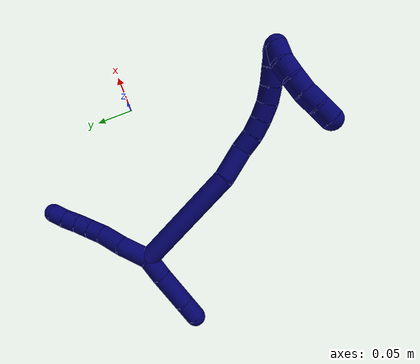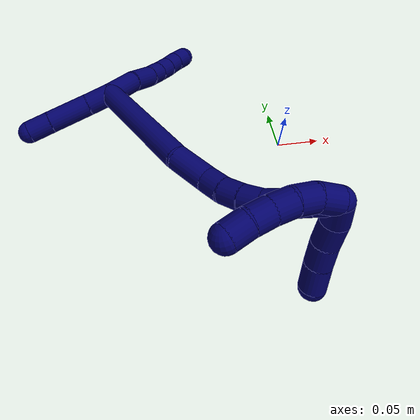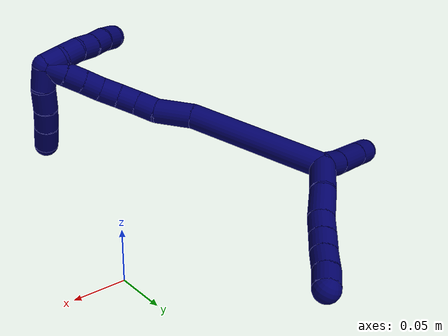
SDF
<sdf version="1.7">
 <world name="default">
  <model name="7">
   <static>0</static>
   <link name="7">
    <collision name="collision-cylinder-e_1_2_8">
     <pose>0.010682 0.015475 -0.00401 -1.82433 0.589076 -0.747153</pose>
     <geometry><cylinder><radius>0.0125</radius><length>0.038454</length></cylinder></geometry>
     <surface>
      <friction><ode><mu>1.16</mu><mu2>1.16</mu2><slip1>0</slip1><slip2>0</slip2></ode></friction>
      <contact><ode><kp>1e+06</kp><kd>1</kd><max_vel>0</max_vel><min_depth>0.001</min_depth></ode></contact>
     </surface>
    </collision>
    <visual name="visual-cylinder-e_1_2_8">
     <pose>0.010682 0.015475 -0.00401 -1.82433 0.589076 -0.747153</pose>
     <geometry><cylinder><radius>0.0125</radius><length>0.038454</length></cylinder></geometry>
     <material><ambient>0.003922 0 0.403922 1</ambient></material>
    </visual>
    <collision name="collision-cylinder-e_2_8_9">
     <pose>0.029428 0.043184 -0.013838 -2.01477 0.536927 -0.821444</pose>
     <geometry><cylinder><radius>0.0125</radius><length>0.031529</length></cylinder></geometry>
     <surface>
      <friction><ode><mu>1.16</mu><mu2>1.16</mu2><slip1>0</slip1><slip2>0</slip2></ode></friction>
      <contact><ode><kp>1e+06</kp><kd>1</kd><max_vel>0</max_vel><min_depth>0.001</min_depth></ode></contact>
     </surface>
    </collision>
    <visual name="visual-cylinder-e_2_8_9">
     <pose>0.029428 0.043184 -0.013838 -2.01477 0.536927 -0.821444</pose>
     <geometry><cylinder><radius>0.0125</radius><length>0.031529</length></cylinder></geometry>
     <material><ambient>0.003922 0 0.403922 1</ambient></material>
    </visual>
    <collision name="collision-cylinder-e_3_9_10">
     <pose>0.042037 0.063846 -0.022544 -1.90082 0.47165 -0.64887</pose>
     <geometry><cylinder><radius>0.0125</radius><length>0.020005</length></cylinder></geometry>
     <surface>
      <friction><ode><mu>1.16</mu><mu2>1.16</mu2><slip1>0</slip1><slip2>0</slip2></ode></friction>
      <contact><ode><kp>1e+06</kp><kd>1</kd><max_vel>0</max_vel><min_depth>0.001</min_depth></ode></contact>
     </surface>
    </collision>
    <visual name="visual-cylinder-e_3_9_10">
     <pose>0.042037 0.063846 -0.022544 -1.90082 0.47165 -0.64887</pose>
     <geometry><cylinder><radius>0.0125</radius><length>0.020005</length></cylinder></geometry>
     <material><ambient>0.003922 0 0.403922 1</ambient></material>
    </visual>
    <collision name="collision-cylinder-e_4_10_11">
     <pose>0.051524 0.08059 -0.027974 -1.86752 0.516966 -0.686364</pose>
     <geometry><cylinder><radius>0.0125</radius><length>0.020002</length></cylinder></geometry>
     <surface>
      <friction><ode><mu>1.16</mu><mu2>1.16</mu2><slip1>0</slip1><slip2>0</slip2></ode></friction>
      <contact><ode><kp>1e+06</kp><kd>1</kd><max_vel>0</max_vel><min_depth>0.001</min_depth></ode></contact>
     </surface>
    </collision>
    <visual name="visual-cylinder-e_4_10_11">
     <pose>0.051524 0.08059 -0.027974 -1.86752 0.516966 -0.686364</pose>
     <geometry><cylinder><radius>0.0125</radius><length>0.020002</length></cylinder></geometry>
     <material><ambient>0.003922 0 0.403922 1</ambient></material>
    </visual>
    <collision name="collision-cylinder-e_5_11_12">
     <pose>0.06126 0.097472 -0.03243 -1.79058 0.499682 -0.616622</pose>
     <geometry><cylinder><radius>0.0125</radius><length>0.020003</length></cylinder></geometry>
     <surface>
      <friction><ode><mu>1.16</mu><mu2>1.16</mu2><slip1>0</slip1><slip2>0</slip2></ode></friction>
      <contact><ode><kp>1e+06</kp><kd>1</kd><max_vel>0</max_vel><min_depth>0.001</min_depth></ode></contact>
     </surface>
    </collision>
    <visual name="visual-cylinder-e_5_11_12">
     <pose>0.06126 0.097472 -0.03243 -1.79058 0.499682 -0.616622</pose>
     <geometry><cylinder><radius>0.0125</radius><length>0.020003</length></cylinder></geometry>
     <material><ambient>0.003922 0 0.403922 1</ambient></material>
    </visual>
    <collision name="collision-cylinder-e_6_12_6">
     <pose>0.071635 0.114034 -0.036576 -1.84305 0.592082 -0.764147</pose>
     <geometry><cylinder><radius>0.0125</radius><length>0.020006</length></cylinder></geometry>
     <surface>
      <friction><ode><mu>1.16</mu><mu2>1.16</mu2><slip1>0</slip1><slip2>0</slip2></ode></friction>
      <contact><ode><kp>1e+06</kp><kd>1</kd><max_vel>0</max_vel><min_depth>0.001</min_depth></ode></contact>
     </surface>
    </collision>
    <visual name="visual-cylinder-e_6_12_6">
     <pose>0.071635 0.114034 -0.036576 -1.84305 0.592082 -0.764147</pose>
     <geometry><cylinder><radius>0.0125</radius><length>0.020006</length></cylinder></geometry>
     <material><ambient>0.003922 0 0.403922 1</ambient></material>
    </visual>
    <collision name="collision-cylinder-e_1_2_13">
     <pose>-0.013534 -0.003868 -0.000372 1.66657 -1.29118 -1.38447</pose>
     <geometry><cylinder><radius>0.0125</radius><length>0.028161</length></cylinder></geometry>
     <surface>
      <friction><ode><mu>1.16</mu><mu2>1.16</mu2><slip1>0</slip1><slip2>0</slip2></ode></friction>
      <contact><ode><kp>1e+06</kp><kd>1</kd><max_vel>0</max_vel><min_depth>0.001</min_depth></ode></contact>
     </surface>
    </collision>
    <visual name="visual-cylinder-e_1_2_13">
     <pose>-0.013534 -0.003868 -0.000372 1.66657 -1.29118 -1.38447</pose>
     <geometry><cylinder><radius>0.0125</radius><length>0.028161</length></cylinder></geometry>
     <material><ambient>0.003922 0 0.403922 1</ambient></material>
    </visual>
    <collision name="collision-cylinder-e_2_13_14">
     <pose>-0.048661 -0.015922 -0.000186 1.5028 -1.20769 -1.14488</pose>
     <geometry><cylinder><radius>0.0125</radius><length>0.046199</length></cylinder></geometry>
     <surface>
      <friction><ode><mu>1.16</mu><mu2>1.16</mu2><slip1>0</slip1><slip2>0</slip2></ode></friction>
      <contact><ode><kp>1e+06</kp><kd>1</kd><max_vel>0</max_vel><min_depth>0.001</min_depth></ode></contact>
     </surface>
    </collision>
    <visual name="visual-cylinder-e_2_13_14">
     <pose>-0.048661 -0.015922 -0.000186 1.5028 -1.20769 -1.14488</pose>
     <geometry><cylinder><radius>0.0125</radius><length>0.046199</length></cylinder></geometry>
     <material><ambient>0.003922 0 0.403922 1</ambient></material>
    </visual>
    <collision name="collision-cylinder-e_3_14_5">
     <pose>-0.082278 -0.028551 0.000543 1.53221 -1.2166 -1.18065</pose>
     <geometry><cylinder><radius>0.0125</radius><length>0.02564</length></cylinder></geometry>
     <surface>
      <friction><ode><mu>1.16</mu><mu2>1.16</mu2><slip1>0</slip1><slip2>0</slip2></ode></friction>
      <contact><ode><kp>1e+06</kp><kd>1</kd><max_vel>0</max_vel><min_depth>0.001</min_depth></ode></contact>
     </surface>
    </collision>
    <visual name="visual-cylinder-e_3_14_5">
     <pose>-0.082278 -0.028551 0.000543 1.53221 -1.2166 -1.18065</pose>
     <geometry><cylinder><radius>0.0125</radius><length>0.02564</length></cylinder></geometry>
     <material><ambient>0.003922 0 0.403922 1</ambient></material>
    </visual>
    <collision name="collision-cylinder-e_1_2_15">
     <pose>0.035015 -0.05853 -0.0134 1.79586 0.527946 0.653954</pose>
     <geometry><cylinder><radius>0.0125</radius><length>0.139016</length></cylinder></geometry>
     <surface>
      <friction><ode><mu>1.16</mu><mu2>1.16</mu2><slip1>0</slip1><slip2>0</slip2></ode></friction>
      <contact><ode><kp>1e+06</kp><kd>1</kd><max_vel>0</max_vel><min_depth>0.001</min_depth></ode></contact>
     </surface>
    </collision>
    <visual name="visual-cylinder-e_1_2_15">
     <pose>0.035015 -0.05853 -0.0134 1.79586 0.527946 0.653954</pose>
     <geometry><cylinder><radius>0.0125</radius><length>0.139016</length></cylinder></geometry>
     <material><ambient>0.003922 0 0.403922 1</ambient></material>
    </visual>
    <collision name="collision-cylinder-e_2_15_16">
     <pose>0.08212 -0.130537 -0.033471 2.03047 0.677097 1.0319</pose>
     <geometry><cylinder><radius>0.0125</radius><length>0.038589</length></cylinder></geometry>
     <surface>
      <friction><ode><mu>1.16</mu><mu2>1.16</mu2><slip1>0</slip1><slip2>0</slip2></ode></friction>
      <contact><ode><kp>1e+06</kp><kd>1</kd><max_vel>0</max_vel><min_depth>0.001</min_depth></ode></contact>
     </surface>
    </collision>
    <visual name="visual-cylinder-e_2_15_16">
     <pose>0.08212 -0.130537 -0.033471 2.03047 0.677097 1.0319</pose>
     <geometry><cylinder><radius>0.0125</radius><length>0.038589</length></cylinder></geometry>
     <material><ambient>0.003922 0 0.403922 1</ambient></material>
    </visual>
    <collision name="collision-cylinder-e_3_16_17">
     <pose>0.100626 -0.152341 -0.041542 1.73728 0.649904 0.757956</pose>
     <geometry><cylinder><radius>0.0125</radius><length>0.021212</length></cylinder></geometry>
     <surface>
      <friction><ode><mu>1.16</mu><mu2>1.16</mu2><slip1>0</slip1><slip2>0</slip2></ode></friction>
      <contact><ode><kp>1e+06</kp><kd>1</kd><max_vel>0</max_vel><min_depth>0.001</min_depth></ode></contact>
     </surface>
    </collision>
    <visual name="visual-cylinder-e_3_16_17">
     <pose>0.100626 -0.152341 -0.041542 1.73728 0.649904 0.757956</pose>
     <geometry><cylinder><radius>0.0125</radius><length>0.021212</length></cylinder></geometry>
     <material><ambient>0.003922 0 0.403922 1</ambient></material>
    </visual>
    <collision name="collision-cylinder-e_4_17_18">
     <pose>0.114584 -0.167434 -0.043762 1.69152 0.835881 0.92927</pose>
     <geometry><cylinder><radius>0.0125</radius><length>0.020327</length></cylinder></geometry>
     <surface>
      <friction><ode><mu>1.16</mu><mu2>1.16</mu2><slip1>0</slip1><slip2>0</slip2></ode></friction>
      <contact><ode><kp>1e+06</kp><kd>1</kd><max_vel>0</max_vel><min_depth>0.001</min_depth></ode></contact>
     </surface>
    </collision>
    <visual name="visual-cylinder-e_4_17_18">
     <pose>0.114584 -0.167434 -0.043762 1.69152 0.835881 0.92927</pose>
     <geometry><cylinder><radius>0.0125</radius><length>0.020327</length></cylinder></geometry>
     <material><ambient>0.003922 0 0.403922 1</ambient></material>
    </visual>
    <collision name="collision-cylinder-e_5_18_19">
     <pose>0.130243 -0.180053 -0.045059 1.65187 0.944509 1.0118</pose>
     <geometry><cylinder><radius>0.0125</radius><length>0.02004</length></cylinder></geometry>
     <surface>
      <friction><ode><mu>1.16</mu><mu2>1.16</mu2><slip1>0</slip1><slip2>0</slip2></ode></friction>
      <contact><ode><kp>1e+06</kp><kd>1</kd><max_vel>0</max_vel><min_depth>0.001</min_depth></ode></contact>
     </surface>
    </collision>
    <visual name="visual-cylinder-e_5_18_19">
     <pose>0.130243 -0.180053 -0.045059 1.65187 0.944509 1.0118</pose>
     <geometry><cylinder><radius>0.0125</radius><length>0.02004</length></cylinder></geometry>
     <material><ambient>0.003922 0 0.403922 1</ambient></material>
    </visual>
    <collision name="collision-cylinder-e_6_19_20">
     <pose>0.1474 -0.190097 -0.044593 1.34986 1.12726 0.936575</pose>
     <geometry><cylinder><radius>0.0125</radius><length>0.020016</length></cylinder></geometry>
     <surface>
      <friction><ode><mu>1.16</mu><mu2>1.16</mu2><slip1>0</slip1><slip2>0</slip2></ode></friction>
      <contact><ode><kp>1e+06</kp><kd>1</kd><max_vel>0</max_vel><min_depth>0.001</min_depth></ode></contact>
     </surface>
    </collision>
    <visual name="visual-cylinder-e_6_19_20">
     <pose>0.1474 -0.190097 -0.044593 1.34986 1.12726 0.936575</pose>
     <geometry><cylinder><radius>0.0125</radius><length>0.020016</length></cylinder></geometry>
     <material><ambient>0.003922 0 0.403922 1</ambient></material>
    </visual>
    <collision name="collision-cylinder-e_7_20_21">
     <pose>0.166119 -0.197857 -0.042569 1.27622 1.20295 0.941601</pose>
     <geometry><cylinder><radius>0.0125</radius><length>0.020746</length></cylinder></geometry>
     <surface>
      <friction><ode><mu>1.16</mu><mu2>1.16</mu2><slip1>0</slip1><slip2>0</slip2></ode></friction>
      <contact><ode><kp>1e+06</kp><kd>1</kd><max_vel>0</max_vel><min_depth>0.001</min_depth></ode></contact>
     </surface>
    </collision>
    <visual name="visual-cylinder-e_7_20_21">
     <pose>0.166119 -0.197857 -0.042569 1.27622 1.20295 0.941601</pose>
     <geometry><cylinder><radius>0.0125</radius><length>0.020746</length></cylinder></geometry>
     <material><ambient>0.003922 0 0.403922 1</ambient></material>
    </visual>
    <collision name="collision-cylinder-e_8_21_1">
     <pose>0.185145 -0.204975 -0.04072 1.35829 1.20027 1.00941</pose>
     <geometry><cylinder><radius>0.0125</radius><length>0.020053</length></cylinder></geometry>
     <surface>
      <friction><ode><mu>1.16</mu><mu2>1.16</mu2><slip1>0</slip1><slip2>0</slip2></ode></friction>
      <contact><ode><kp>1e+06</kp><kd>1</kd><max_vel>0</max_vel><min_depth>0.001</min_depth></ode></contact>
     </surface>
    </collision>
    <visual name="visual-cylinder-e_8_21_1">
     <pose>0.185145 -0.204975 -0.04072 1.35829 1.20027 1.00941</pose>
     <geometry><cylinder><radius>0.0125</radius><length>0.020053</length></cylinder></geometry>
     <material><ambient>0.003922 0 0.403922 1</ambient></material>
    </visual>
    <collision name="collision-cylinder-e_1_1_22">
     <pose>0.191701 -0.207301 -0.05142 -3.03533 -0.237417 2.3027</pose>
     <geometry><cylinder><radius>0.0125</radius><length>0.023728</length></cylinder></geometry>
     <surface>
      <friction><ode><mu>1.16</mu><mu2>1.16</mu2><slip1>0</slip1><slip2>0</slip2></ode></friction>
      <contact><ode><kp>1e+06</kp><kd>1</kd><max_vel>0</max_vel><min_depth>0.001</min_depth></ode></contact>
     </surface>
    </collision>
    <visual name="visual-cylinder-e_1_1_22">
     <pose>0.191701 -0.207301 -0.05142 -3.03533 -0.237417 2.3027</pose>
     <geometry><cylinder><radius>0.0125</radius><length>0.023728</length></cylinder></geometry>
     <material><ambient>0.003922 0 0.403922 1</ambient></material>
    </visual>
    <collision name="collision-cylinder-e_2_22_23">
     <pose>0.183403 -0.205946 -0.074345 -3.13002 -0.448 3.09079</pose>
     <geometry><cylinder><radius>0.0125</radius><length>0.025427</length></cylinder></geometry>
     <surface>
      <friction><ode><mu>1.16</mu><mu2>1.16</mu2><slip1>0</slip1><slip2>0</slip2></ode></friction>
      <contact><ode><kp>1e+06</kp><kd>1</kd><max_vel>0</max_vel><min_depth>0.001</min_depth></ode></contact>
     </surface>
    </collision>
    <visual name="visual-cylinder-e_2_22_23">
     <pose>0.183403 -0.205946 -0.074345 -3.13002 -0.448 3.09079</pose>
     <geometry><cylinder><radius>0.0125</radius><length>0.025427</length></cylinder></geometry>
     <material><ambient>0.003922 0 0.403922 1</ambient></material>
    </visual>
    <collision name="collision-cylinder-e_3_23_24">
     <pose>0.173115 -0.206777 -0.096789 3.05404 -0.409082 -2.72537</pose>
     <geometry><cylinder><radius>0.0125</radius><length>0.02404</length></cylinder></geometry>
     <surface>
      <friction><ode><mu>1.16</mu><mu2>1.16</mu2><slip1>0</slip1><slip2>0</slip2></ode></friction>
      <contact><ode><kp>1e+06</kp><kd>1</kd><max_vel>0</max_vel><min_depth>0.001</min_depth></ode></contact>
     </surface>
    </collision>
    <visual name="visual-cylinder-e_3_23_24">
     <pose>0.173115 -0.206777 -0.096789 3.05404 -0.409082 -2.72537</pose>
     <geometry><cylinder><radius>0.0125</radius><length>0.02404</length></cylinder></geometry>
     <material><ambient>0.003922 0 0.403922 1</ambient></material>
    </visual>
    <collision name="collision-cylinder-e_4_24_4">
     <pose>0.163242 -0.209597 -0.120033 2.99139 -0.389675 -2.41304</pose>
     <geometry><cylinder><radius>0.0125</radius><length>0.026805</length></cylinder></geometry>
     <surface>
      <friction><ode><mu>1.16</mu><mu2>1.16</mu2><slip1>0</slip1><slip2>0</slip2></ode></friction>
      <contact><ode><kp>1e+06</kp><kd>1</kd><max_vel>0</max_vel><min_depth>0.001</min_depth></ode></contact>
     </surface>
    </collision>
    <visual name="visual-cylinder-e_4_24_4">
     <pose>0.163242 -0.209597 -0.120033 2.99139 -0.389675 -2.41304</pose>
     <geometry><cylinder><radius>0.0125</radius><length>0.026805</length></cylinder></geometry>
     <material><ambient>0.003922 0 0.403922 1</ambient></material>
    </visual>
    <collision name="collision-cylinder-e_1_1_25">
     <pose>0.186357 -0.20952 -0.034223 0.171936 -0.949924 -0.088574</pose>
     <geometry><cylinder><radius>0.0125</radius><length>0.02</length></cylinder></geometry>
     <surface>
      <friction><ode><mu>1.16</mu><mu2>1.16</mu2><slip1>0</slip1><slip2>0</slip2></ode></friction>
      <contact><ode><kp>1e+06</kp><kd>1</kd><max_vel>0</max_vel><min_depth>0.001</min_depth></ode></contact>
     </surface>
    </collision>
    <visual name="visual-cylinder-e_1_1_25">
     <pose>0.186357 -0.20952 -0.034223 0.171936 -0.949924 -0.088574</pose>
     <geometry><cylinder><radius>0.0125</radius><length>0.02</length></cylinder></geometry>
     <material><ambient>0.003922 0 0.403922 1</ambient></material>
    </visual>
    <collision name="collision-cylinder-e_2_25_26">
     <pose>0.169618 -0.213778 -0.024579 0.695117 -1.03628 -0.407322</pose>
     <geometry><cylinder><radius>0.0125</radius><length>0.02</length></cylinder></geometry>
     <surface>
      <friction><ode><mu>1.16</mu><mu2>1.16</mu2><slip1>0</slip1><slip2>0</slip2></ode></friction>
      <contact><ode><kp>1e+06</kp><kd>1</kd><max_vel>0</max_vel><min_depth>0.001</min_depth></ode></contact>
     </surface>
    </collision>
    <visual name="visual-cylinder-e_2_25_26">
     <pose>0.169618 -0.213778 -0.024579 0.695117 -1.03628 -0.407322</pose>
     <geometry><cylinder><radius>0.0125</radius><length>0.02</length></cylinder></geometry>
     <material><ambient>0.003922 0 0.403922 1</ambient></material>
    </visual>
    <collision name="collision-cylinder-e_3_26_27">
     <pose>0.151943 -0.220816 -0.018801 1.1117 -1.13615 -0.754924</pose>
     <geometry><cylinder><radius>0.0125</radius><length>0.02</length></cylinder></geometry>
     <surface>
      <friction><ode><mu>1.16</mu><mu2>1.16</mu2><slip1>0</slip1><slip2>0</slip2></ode></friction>
      <contact><ode><kp>1e+06</kp><kd>1</kd><max_vel>0</max_vel><min_depth>0.001</min_depth></ode></contact>
     </surface>
    </collision>
    <visual name="visual-cylinder-e_3_26_27">
     <pose>0.151943 -0.220816 -0.018801 1.1117 -1.13615 -0.754924</pose>
     <geometry><cylinder><radius>0.0125</radius><length>0.02</length></cylinder></geometry>
     <material><ambient>0.003922 0 0.403922 1</ambient></material>
    </visual>
    <collision name="collision-cylinder-e_4_27_28">
     <pose>0.134488 -0.229611 -0.014814 1.17111 -0.994431 -0.690901</pose>
     <geometry><cylinder><radius>0.0125</radius><length>0.02</length></cylinder></geometry>
     <surface>
      <friction><ode><mu>1.16</mu><mu2>1.16</mu2><slip1>0</slip1><slip2>0</slip2></ode></friction>
      <contact><ode><kp>1e+06</kp><kd>1</kd><max_vel>0</max_vel><min_depth>0.001</min_depth></ode></contact>
     </surface>
    </collision>
    <visual name="visual-cylinder-e_4_27_28">
     <pose>0.134488 -0.229611 -0.014814 1.17111 -0.994431 -0.690901</pose>
     <geometry><cylinder><radius>0.0125</radius><length>0.02</length></cylinder></geometry>
     <material><ambient>0.003922 0 0.403922 1</ambient></material>
    </visual>
    <collision name="collision-cylinder-e_5_28_3">
     <pose>0.117437 -0.239603 -0.012282 1.48822 -1.04843 -0.978303</pose>
     <geometry><cylinder><radius>0.0125</radius><length>0.02</length></cylinder></geometry>
     <surface>
      <friction><ode><mu>1.16</mu><mu2>1.16</mu2><slip1>0</slip1><slip2>0</slip2></ode></friction>
      <contact><ode><kp>1e+06</kp><kd>1</kd><max_vel>0</max_vel><min_depth>0.001</min_depth></ode></contact>
     </surface>
    </collision>
    <visual name="visual-cylinder-e_5_28_3">
     <pose>0.117437 -0.239603 -0.012282 1.48822 -1.04843 -0.978303</pose>
     <geometry><cylinder><radius>0.0125</radius><length>0.02</length></cylinder></geometry>
     <material><ambient>0.003922 0 0.403922 1</ambient></material>
    </visual>
    <collision name="collision-sphere-3">
     <pose>0.108771 -0.244576 -0.01187 0 -0 0</pose>
     <geometry><sphere><radius>0.0125</radius></sphere></geometry>
     <surface>
      <friction><ode><mu>1.16</mu><mu2>1.16</mu2><slip1>0</slip1><slip2>0</slip2></ode></friction>
      <contact><ode><kp>1e+06</kp><kd>1</kd><max_vel>0</max_vel><min_depth>0.001</min_depth></ode></contact>
     </surface>
    </collision>
    <visual name="visual-sphere-3">
     <pose>0.108771 -0.244576 -0.01187 0 -0 0</pose>
     <geometry><sphere><radius>0.0125</radius></sphere></geometry>
     <material><ambient>0.003922 0 0.403922 1</ambient></material>
    </visual>
    <collision name="collision-sphere-28">
     <pose>0.126104 -0.234631 -0.012693 0 -0 0</pose>
     <geometry><sphere><radius>0.0125</radius></sphere></geometry>
     <surface>
      <friction><ode><mu>1.16</mu><mu2>1.16</mu2><slip1>0</slip1><slip2>0</slip2></ode></friction>
      <contact><ode><kp>1e+06</kp><kd>1</kd><max_vel>0</max_vel><min_depth>0.001</min_depth></ode></contact>
     </surface>
    </collision>
    <visual name="visual-sphere-28">
     <pose>0.126104 -0.234631 -0.012693 0 -0 0</pose>
     <geometry><sphere><radius>0.0125</radius></sphere></geometry>
     <material><ambient>0.003922 0 0.403922 1</ambient></material>
    </visual>
    <collision name="collision-sphere-27">
     <pose>0.142873 -0.22459 -0.016935 0 -0 0</pose>
     <geometry><sphere><radius>0.0125</radius></sphere></geometry>
     <surface>
      <friction><ode><mu>1.16</mu><mu2>1.16</mu2><slip1>0</slip1><slip2>0</slip2></ode></friction>
      <contact><ode><kp>1e+06</kp><kd>1</kd><max_vel>0</max_vel><min_depth>0.001</min_depth></ode></contact>
     </surface>
    </collision>
    <visual name="visual-sphere-27">
     <pose>0.142873 -0.22459 -0.016935 0 -0 0</pose>
     <geometry><sphere><radius>0.0125</radius></sphere></geometry>
     <material><ambient>0.003922 0 0.403922 1</ambient></material>
    </visual>
    <collision name="collision-sphere-26">
     <pose>0.161013 -0.217041 -0.020667 0 -0 0</pose>
     <geometry><sphere><radius>0.0125</radius></sphere></geometry>
     <surface>
      <friction><ode><mu>1.16</mu><mu2>1.16</mu2><slip1>0</slip1><slip2>0</slip2></ode></friction>
      <contact><ode><kp>1e+06</kp><kd>1</kd><max_vel>0</max_vel><min_depth>0.001</min_depth></ode></contact>
     </surface>
    </collision>
    <visual name="visual-sphere-26">
     <pose>0.161013 -0.217041 -0.020667 0 -0 0</pose>
     <geometry><sphere><radius>0.0125</radius></sphere></geometry>
     <material><ambient>0.003922 0 0.403922 1</ambient></material>
    </visual>
    <collision name="collision-sphere-25">
     <pose>0.178223 -0.210515 -0.028491 0 -0 0</pose>
     <geometry><sphere><radius>0.0125</radius></sphere></geometry>
     <surface>
      <friction><ode><mu>1.16</mu><mu2>1.16</mu2><slip1>0</slip1><slip2>0</slip2></ode></friction>
      <contact><ode><kp>1e+06</kp><kd>1</kd><max_vel>0</max_vel><min_depth>0.001</min_depth></ode></contact>
     </surface>
    </collision>
    <visual name="visual-sphere-25">
     <pose>0.178223 -0.210515 -0.028491 0 -0 0</pose>
     <geometry><sphere><radius>0.0125</radius></sphere></geometry>
     <material><ambient>0.003922 0 0.403922 1</ambient></material>
    </visual>
    <collision name="collision-sphere-4">
     <pose>0.158151 -0.211452 -0.132291 0 -0 0</pose>
     <geometry><sphere><radius>0.0125</radius></sphere></geometry>
     <surface>
      <friction><ode><mu>1.16</mu><mu2>1.16</mu2><slip1>0</slip1><slip2>0</slip2></ode></friction>
      <contact><ode><kp>1e+06</kp><kd>1</kd><max_vel>0</max_vel><min_depth>0.001</min_depth></ode></contact>
     </surface>
    </collision>
    <visual name="visual-sphere-4">
     <pose>0.158151 -0.211452 -0.132291 0 -0 0</pose>
     <geometry><sphere><radius>0.0125</radius></sphere></geometry>
     <material><ambient>0.003922 0 0.403922 1</ambient></material>
    </visual>
    <collision name="collision-sphere-24">
     <pose>0.168334 -0.207742 -0.107775 0 -0 0</pose>
     <geometry><sphere><radius>0.0125</radius></sphere></geometry>
     <surface>
      <friction><ode><mu>1.16</mu><mu2>1.16</mu2><slip1>0</slip1><slip2>0</slip2></ode></friction>
      <contact><ode><kp>1e+06</kp><kd>1</kd><max_vel>0</max_vel><min_depth>0.001</min_depth></ode></contact>
     </surface>
    </collision>
    <visual name="visual-sphere-24">
     <pose>0.168334 -0.207742 -0.107775 0 -0 0</pose>
     <geometry><sphere><radius>0.0125</radius></sphere></geometry>
     <material><ambient>0.003922 0 0.403922 1</ambient></material>
    </visual>
    <collision name="collision-sphere-23">
     <pose>0.177896 -0.205813 -0.085803 0 -0 0</pose>
     <geometry><sphere><radius>0.0125</radius></sphere></geometry>
     <surface>
      <friction><ode><mu>1.16</mu><mu2>1.16</mu2><slip1>0</slip1><slip2>0</slip2></ode></friction>
      <contact><ode><kp>1e+06</kp><kd>1</kd><max_vel>0</max_vel><min_depth>0.001</min_depth></ode></contact>
     </surface>
    </collision>
    <visual name="visual-sphere-23">
     <pose>0.177896 -0.205813 -0.085803 0 -0 0</pose>
     <geometry><sphere><radius>0.0125</radius></sphere></geometry>
     <material><ambient>0.003922 0 0.403922 1</ambient></material>
    </visual>
    <collision name="collision-sphere-22">
     <pose>0.18891 -0.206078 -0.062886 0 -0 0</pose>
     <geometry><sphere><radius>0.0125</radius></sphere></geometry>
     <surface>
      <friction><ode><mu>1.16</mu><mu2>1.16</mu2><slip1>0</slip1><slip2>0</slip2></ode></friction>
      <contact><ode><kp>1e+06</kp><kd>1</kd><max_vel>0</max_vel><min_depth>0.001</min_depth></ode></contact>
     </surface>
    </collision>
    <visual name="visual-sphere-22">
     <pose>0.18891 -0.206078 -0.062886 0 -0 0</pose>
     <geometry><sphere><radius>0.0125</radius></sphere></geometry>
     <material><ambient>0.003922 0 0.403922 1</ambient></material>
    </visual>
    <collision name="collision-sphere-1">
     <pose>0.194491 -0.208525 -0.039955 0 -0 0</pose>
     <geometry><sphere><radius>0.0125</radius></sphere></geometry>
     <surface>
      <friction><ode><mu>1.16</mu><mu2>1.16</mu2><slip1>0</slip1><slip2>0</slip2></ode></friction>
      <contact><ode><kp>1e+06</kp><kd>1</kd><max_vel>0</max_vel><min_depth>0.001</min_depth></ode></contact>
     </surface>
    </collision>
    <visual name="visual-sphere-1">
     <pose>0.194491 -0.208525 -0.039955 0 -0 0</pose>
     <geometry><sphere><radius>0.0125</radius></sphere></geometry>
     <material><ambient>0.003922 0 0.403922 1</ambient></material>
    </visual>
    <collision name="collision-sphere-21">
     <pose>0.175798 -0.201426 -0.041486 0 -0 0</pose>
     <geometry><sphere><radius>0.0125</radius></sphere></geometry>
     <surface>
      <friction><ode><mu>1.16</mu><mu2>1.16</mu2><slip1>0</slip1><slip2>0</slip2></ode></friction>
      <contact><ode><kp>1e+06</kp><kd>1</kd><max_vel>0</max_vel><min_depth>0.001</min_depth></ode></contact>
     </surface>
    </collision>
    <visual name="visual-sphere-21">
     <pose>0.175798 -0.201426 -0.041486 0 -0 0</pose>
     <geometry><sphere><radius>0.0125</radius></sphere></geometry>
     <material><ambient>0.003922 0 0.403922 1</ambient></material>
    </visual>
    <collision name="collision-sphere-12">
     <pose>0.066052 0.10604 -0.034344 0 -0 0</pose>
     <geometry><sphere><radius>0.0125</radius></sphere></geometry>
     <surface>
      <friction><ode><mu>1.16</mu><mu2>1.16</mu2><slip1>0</slip1><slip2>0</slip2></ode></friction>
      <contact><ode><kp>1e+06</kp><kd>1</kd><max_vel>0</max_vel><min_depth>0.001</min_depth></ode></contact>
     </surface>
    </collision>
    <visual name="visual-sphere-12">
     <pose>0.066052 0.10604 -0.034344 0 -0 0</pose>
     <geometry><sphere><radius>0.0125</radius></sphere></geometry>
     <material><ambient>0.003922 0 0.403922 1</ambient></material>
    </visual>
    <collision name="collision-sphere-11">
     <pose>0.056467 0.088905 -0.030516 0 -0 0</pose>
     <geometry><sphere><radius>0.0125</radius></sphere></geometry>
     <surface>
      <friction><ode><mu>1.16</mu><mu2>1.16</mu2><slip1>0</slip1><slip2>0</slip2></ode></friction>
      <contact><ode><kp>1e+06</kp><kd>1</kd><max_vel>0</max_vel><min_depth>0.001</min_depth></ode></contact>
     </surface>
    </collision>
    <visual name="visual-sphere-11">
     <pose>0.056467 0.088905 -0.030516 0 -0 0</pose>
     <geometry><sphere><radius>0.0125</radius></sphere></geometry>
     <material><ambient>0.003922 0 0.403922 1</ambient></material>
    </visual>
    <collision name="collision-sphere-10">
     <pose>0.046581 0.072276 -0.025432 0 -0 0</pose>
     <geometry><sphere><radius>0.0125</radius></sphere></geometry>
     <surface>
      <friction><ode><mu>1.16</mu><mu2>1.16</mu2><slip1>0</slip1><slip2>0</slip2></ode></friction>
      <contact><ode><kp>1e+06</kp><kd>1</kd><max_vel>0</max_vel><min_depth>0.001</min_depth></ode></contact>
     </surface>
    </collision>
    <visual name="visual-sphere-10">
     <pose>0.046581 0.072276 -0.025432 0 -0 0</pose>
     <geometry><sphere><radius>0.0125</radius></sphere></geometry>
     <material><ambient>0.003922 0 0.403922 1</ambient></material>
    </visual>
    <collision name="collision-sphere-9">
     <pose>0.037492 0.055417 -0.019657 0 -0 0</pose>
     <geometry><sphere><radius>0.0125</radius></sphere></geometry>
     <surface>
      <friction><ode><mu>1.16</mu><mu2>1.16</mu2><slip1>0</slip1><slip2>0</slip2></ode></friction>
      <contact><ode><kp>1e+06</kp><kd>1</kd><max_vel>0</max_vel><min_depth>0.001</min_depth></ode></contact>
     </surface>
    </collision>
    <visual name="visual-sphere-9">
     <pose>0.037492 0.055417 -0.019657 0 -0 0</pose>
     <geometry><sphere><radius>0.0125</radius></sphere></geometry>
     <material><ambient>0.003922 0 0.403922 1</ambient></material>
    </visual>
    <collision name="collision-sphere-2">
     <geometry><sphere><radius>0.0125</radius></sphere></geometry>
     <surface>
      <friction><ode><mu>1.16</mu><mu2>1.16</mu2><slip1>0</slip1><slip2>0</slip2></ode></friction>
      <contact><ode><kp>1e+06</kp><kd>1</kd><max_vel>0</max_vel><min_depth>0.001</min_depth></ode></contact>
     </surface>
    </collision>
    <visual name="visual-sphere-2">
     <geometry><sphere><radius>0.0125</radius></sphere></geometry>
     <material><ambient>0.003922 0 0.403922 1</ambient></material>
    </visual>
    <collision name="collision-sphere-19">
     <pose>0.138361 -0.185906 -0.045534 0 -0 0</pose>
     <geometry><sphere><radius>0.0125</radius></sphere></geometry>
     <surface>
      <friction><ode><mu>1.16</mu><mu2>1.16</mu2><slip1>0</slip1><slip2>0</slip2></ode></friction>
      <contact><ode><kp>1e+06</kp><kd>1</kd><max_vel>0</max_vel><min_depth>0.001</min_depth></ode></contact>
     </surface>
    </collision>
    <visual name="visual-sphere-19">
     <pose>0.138361 -0.185906 -0.045534 0 -0 0</pose>
     <geometry><sphere><radius>0.0125</radius></sphere></geometry>
     <material><ambient>0.003922 0 0.403922 1</ambient></material>
    </visual>
    <collision name="collision-sphere-8">
     <pose>0.021365 0.030951 -0.00802 0 -0 0</pose>
     <geometry><sphere><radius>0.0125</radius></sphere></geometry>
     <surface>
      <friction><ode><mu>1.16</mu><mu2>1.16</mu2><slip1>0</slip1><slip2>0</slip2></ode></friction>
      <contact><ode><kp>1e+06</kp><kd>1</kd><max_vel>0</max_vel><min_depth>0.001</min_depth></ode></contact>
     </surface>
    </collision>
    <visual name="visual-sphere-8">
     <pose>0.021365 0.030951 -0.00802 0 -0 0</pose>
     <geometry><sphere><radius>0.0125</radius></sphere></geometry>
     <material><ambient>0.003922 0 0.403922 1</ambient></material>
    </visual>
    <collision name="collision-sphere-6">
     <pose>0.077217 0.122029 -0.038808 0 -0 0</pose>
     <geometry><sphere><radius>0.0125</radius></sphere></geometry>
     <surface>
      <friction><ode><mu>1.16</mu><mu2>1.16</mu2><slip1>0</slip1><slip2>0</slip2></ode></friction>
      <contact><ode><kp>1e+06</kp><kd>1</kd><max_vel>0</max_vel><min_depth>0.001</min_depth></ode></contact>
     </surface>
    </collision>
    <visual name="visual-sphere-6">
     <pose>0.077217 0.122029 -0.038808 0 -0 0</pose>
     <geometry><sphere><radius>0.0125</radius></sphere></geometry>
     <material><ambient>0.003922 0 0.403922 1</ambient></material>
    </visual>
    <collision name="collision-sphere-13">
     <pose>-0.027067 -0.007737 -0.000743 0 -0 0</pose>
     <geometry><sphere><radius>0.0125</radius></sphere></geometry>
     <surface>
      <friction><ode><mu>1.16</mu><mu2>1.16</mu2><slip1>0</slip1><slip2>0</slip2></ode></friction>
      <contact><ode><kp>1e+06</kp><kd>1</kd><max_vel>0</max_vel><min_depth>0.001</min_depth></ode></contact>
     </surface>
    </collision>
    <visual name="visual-sphere-13">
     <pose>-0.027067 -0.007737 -0.000743 0 -0 0</pose>
     <geometry><sphere><radius>0.0125</radius></sphere></geometry>
     <material><ambient>0.003922 0 0.403922 1</ambient></material>
    </visual>
    <collision name="collision-sphere-14">
     <pose>-0.070254 -0.024108 0.000372 0 -0 0</pose>
     <geometry><sphere><radius>0.0125</radius></sphere></geometry>
     <surface>
      <friction><ode><mu>1.16</mu><mu2>1.16</mu2><slip1>0</slip1><slip2>0</slip2></ode></friction>
      <contact><ode><kp>1e+06</kp><kd>1</kd><max_vel>0</max_vel><min_depth>0.001</min_depth></ode></contact>
     </surface>
    </collision>
    <visual name="visual-sphere-14">
     <pose>-0.070254 -0.024108 0.000372 0 -0 0</pose>
     <geometry><sphere><radius>0.0125</radius></sphere></geometry>
     <material><ambient>0.003922 0 0.403922 1</ambient></material>
    </visual>
    <collision name="collision-sphere-5">
     <pose>-0.094302 -0.032994 0.000715 0 -0 0</pose>
     <geometry><sphere><radius>0.0125</radius></sphere></geometry>
     <surface>
      <friction><ode><mu>1.16</mu><mu2>1.16</mu2><slip1>0</slip1><slip2>0</slip2></ode></friction>
      <contact><ode><kp>1e+06</kp><kd>1</kd><max_vel>0</max_vel><min_depth>0.001</min_depth></ode></contact>
     </surface>
    </collision>
    <visual name="visual-sphere-5">
     <pose>-0.094302 -0.032994 0.000715 0 -0 0</pose>
     <geometry><sphere><radius>0.0125</radius></sphere></geometry>
     <material><ambient>0.003922 0 0.403922 1</ambient></material>
    </visual>
    <collision name="collision-sphere-15">
     <pose>0.070031 -0.11706 -0.0268 0 -0 0</pose>
     <geometry><sphere><radius>0.0125</radius></sphere></geometry>
     <surface>
      <friction><ode><mu>1.16</mu><mu2>1.16</mu2><slip1>0</slip1><slip2>0</slip2></ode></friction>
      <contact><ode><kp>1e+06</kp><kd>1</kd><max_vel>0</max_vel><min_depth>0.001</min_depth></ode></contact>
     </surface>
    </collision>
    <visual name="visual-sphere-15">
     <pose>0.070031 -0.11706 -0.0268 0 -0 0</pose>
     <geometry><sphere><radius>0.0125</radius></sphere></geometry>
     <material><ambient>0.003922 0 0.403922 1</ambient></material>
    </visual>
    <collision name="collision-sphere-16">
     <pose>0.094208 -0.144014 -0.040143 0 -0 0</pose>
     <geometry><sphere><radius>0.0125</radius></sphere></geometry>
     <surface>
      <friction><ode><mu>1.16</mu><mu2>1.16</mu2><slip1>0</slip1><slip2>0</slip2></ode></friction>
      <contact><ode><kp>1e+06</kp><kd>1</kd><max_vel>0</max_vel><min_depth>0.001</min_depth></ode></contact>
     </surface>
    </collision>
    <visual name="visual-sphere-16">
     <pose>0.094208 -0.144014 -0.040143 0 -0 0</pose>
     <geometry><sphere><radius>0.0125</radius></sphere></geometry>
     <material><ambient>0.003922 0 0.403922 1</ambient></material>
    </visual>
    <collision name="collision-sphere-17">
     <pose>0.107044 -0.160668 -0.042942 0 -0 0</pose>
     <geometry><sphere><radius>0.0125</radius></sphere></geometry>
     <surface>
      <friction><ode><mu>1.16</mu><mu2>1.16</mu2><slip1>0</slip1><slip2>0</slip2></ode></friction>
      <contact><ode><kp>1e+06</kp><kd>1</kd><max_vel>0</max_vel><min_depth>0.001</min_depth></ode></contact>
     </surface>
    </collision>
    <visual name="visual-sphere-17">
     <pose>0.107044 -0.160668 -0.042942 0 -0 0</pose>
     <geometry><sphere><radius>0.0125</radius></sphere></geometry>
     <material><ambient>0.003922 0 0.403922 1</ambient></material>
    </visual>
    <collision name="collision-sphere-18">
     <pose>0.122124 -0.174199 -0.044583 0 -0 0</pose>
     <geometry><sphere><radius>0.0125</radius></sphere></geometry>
     <surface>
      <friction><ode><mu>1.16</mu><mu2>1.16</mu2><slip1>0</slip1><slip2>0</slip2></ode></friction>
      <contact><ode><kp>1e+06</kp><kd>1</kd><max_vel>0</max_vel><min_depth>0.001</min_depth></ode></contact>
     </surface>
    </collision>
    <visual name="visual-sphere-18">
     <pose>0.122124 -0.174199 -0.044583 0 -0 0</pose>
     <geometry><sphere><radius>0.0125</radius></sphere></geometry>
     <material><ambient>0.003922 0 0.403922 1</ambient></material>
    </visual>
    <collision name="collision-sphere-20">
     <pose>0.15644 -0.194287 -0.043652 0 -0 0</pose>
     <geometry><sphere><radius>0.0125</radius></sphere></geometry>
     <surface>
      <friction><ode><mu>1.16</mu><mu2>1.16</mu2><slip1>0</slip1><slip2>0</slip2></ode></friction>
      <contact><ode><kp>1e+06</kp><kd>1</kd><max_vel>0</max_vel><min_depth>0.001</min_depth></ode></contact>
     </surface>
    </collision>
    <visual name="visual-sphere-20">
     <pose>0.15644 -0.194287 -0.043652 0 -0 0</pose>
     <geometry><sphere><radius>0.0125</radius></sphere></geometry>
     <material><ambient>0.003922 0 0.403922 1</ambient></material>
    </visual>
    <inertial>
     <pose>0.079061 -0.094597 -0.029541 0 -0 0</pose>
     <mass>0.75</mass>
     <inertia>
      <ixx>0.000287</ixx>
      <ixy>0</ixy>
      <ixz>0</ixz>
      <iyy>0.000165</iyy>
      <iyz>0</iyz>
      <izz>7.5e-05</izz>
     </inertia>
    </inertial>
   </link>
   <pose>-0.196787 0.04624 0.072244 -0.28959 -0.307236 -0.037552</pose>
  </model>
 </world>
</sdf>
